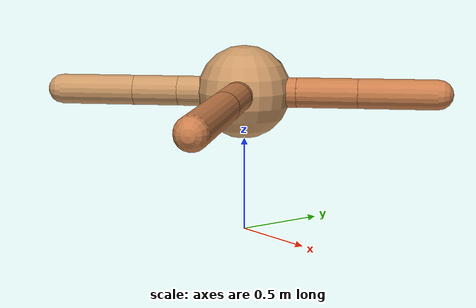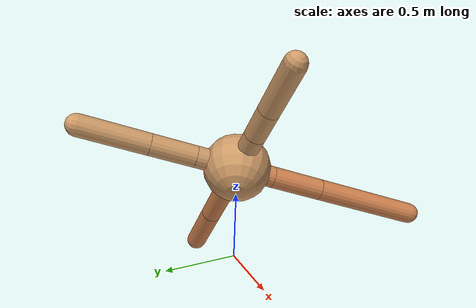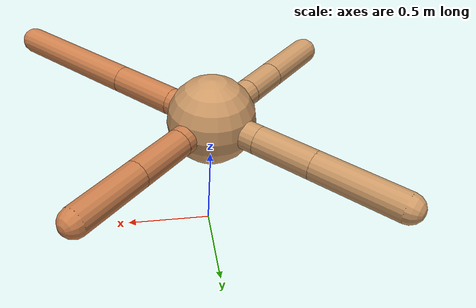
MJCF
<mujoco model="ant">
  <compiler angle="degree" coordinate="local" inertiafromgeom="true" />
  <option integrator="RK4" timestep="0.01" />
  <custom>
    <numeric data="0.0 0.0 0.55 1.0 0.0 0.0 0.0 0.0 1.0 0.0 -1.0 0.0 -1.0 0.0 1.0" name="init_qpos" />
  </custom>
  <default>
    <joint armature="1" damping="1" limited="true" />
    <geom conaffinity="0" condim="3" density="5.0" friction="1.5 0.1 0.1" margin="0.01" rgba="0.8 0.6 0.4 1" />
  </default>
  <worldbody>
    <body name="torso" pos="0 0 0.75">
      <geom name="torso_geom" pos="0 0 0" size="0.25" type="sphere" />

      <body name="front_left_leg" pos="0 0 0">
        <geom fromto="0.0 0.0 0.0 0.2 0.2 0.0" name="aux_1_geom" size="0.08" type="capsule" rgba=".8 .5 .3 1" />
        <body name="aux_1" pos="0.2 0.2 0.0">
          <joint axis="0 0 1" name="hip_1" pos="0.0 0.0 0.0" range="-40 40" type="hinge" />
          <geom fromto="0.0 0.0 0.0 0.2303495997878262 0.2303495997878262 0.0" name="left_leg_geom" size="0.08" type="capsule" rgba=".8 .5 .3 1" />
          <body pos="0.2303495997878262 0.2303495997878262 0.0" name="front_left_foot">
            <joint axis="-1 1 0" name="ankle_1" pos="0.0 0.0 0.0" range="30 100" type="hinge" />
            <geom fromto="0.0 0.0 0.0 0.2969980801080251 0.2969980801080251 0.0" name="left_ankle_geom" size="0.08" type="capsule" rgba=".8 .5 .3 1" />
          </body>
        </body>
      </body>
      <body name="front_right_leg" pos="0 0 0">
        <geom fromto="0.0 0.0 0.0 -0.22147061579373117 0.22147061579373117 0.0" name="aux_2_geom" size="0.08" type="capsule" />
        <body name="aux_2" pos="-0.22147061579373117 0.22147061579373117 0.0">
          <joint axis="0 0 1" name="hip_2" pos="0.0 0.0 0.0" range="-40 40" type="hinge" />
          <geom fromto="0.0 0.0 0.0 -0.23329639674309674 0.23329639674309674 0.0" name="right_leg_geom" size="0.08" type="capsule" />
          <body pos="-0.23329639674309674 0.23329639674309674 0.0" name="front_right_foot">
            <joint axis="1 1 0" name="ankle_2" pos="0.0 0.0 0.0" range="-100 -30" type="hinge" />
            <geom fromto="0.0 0.0 0.0 -0.3490401264214252 0.3490401264214252 0.0" name="right_ankle_geom" size="0.08" type="capsule" />
          </body>
        </body>
      </body>
      <body name="left_back_leg" pos="0 0 0">
        <geom fromto="0.0 0.0 0.0 -0.25192846627506665 -0.25192846627506665 0.0" name="aux_3_geom" size="0.08" type="capsule" />
        <body name="aux_3" pos="-0.25192846627506665 -0.25192846627506665 0.0">
          <joint axis="0 0 1" name="hip_3" pos="0.0 0.0 0.0" range="-40 40" type="hinge" />
          <geom fromto="0.0 0.0 0.0 -0.1712846228804746 -0.1712846228804746 0.0" name="back_leg_geom" size="0.08" type="capsule" />
          <body pos="-0.1712846228804746 -0.1712846228804746 0.0" name="left_back_foot">
            <joint axis="-1 1 0" name="ankle_3" pos="0.0 0.0 0.0" range="-100 -30" type="hinge" />
            <geom fromto="0.0 0.0 0.0 -0.28332002529071726 -0.28332002529071726 0.0" name="third_ankle_geom" size="0.08" type="capsule" />
          </body>
        </body>
      </body>
      <body name="right_back_leg" pos="0 0 0">
        <geom fromto="0.0 0.0 0.0 0.2 -0.2 0.0" name="aux_4_geom" size="0.08" type="capsule" rgba=".8 .5 .3 1" />
        <body name="aux_4" pos="0.2 -0.2 0.0">
          <joint axis="0 0 1" name="hip_4" pos="0.0 0.0 0.0" range="-40 40" type="hinge" />
          <geom fromto="0.0 0.0 0.0 0.2760799272863199 -0.2760799272863199 0.0" name="rightback_leg_geom" size="0.08" type="capsule" rgba=".8 .5 .3 1" />
          <body pos="0.2760799272863199 -0.2760799272863199 0.0" name="right_back_foot">
            <joint axis="1 1 0" name="ankle_4" pos="0.0 0.0 0.0" range="30 100" type="hinge" />
            <geom fromto="0.0 0.0 0.0 0.5761421226862512 -0.5761421226862512 0.0" name="fourth_ankle_geom" size="0.08" type="capsule" rgba=".8 .5 .3 1" />
          </body>
        </body>
      </body>
    </body>
  </worldbody>
  <actuator>
    <motor ctrllimited="true" ctrlrange="-1.0 1.0" joint="hip_4" gear="150" />
    <motor ctrllimited="true" ctrlrange="-1.0 1.0" joint="ankle_4" gear="150" />
    <motor ctrllimited="true" ctrlrange="-1.0 1.0" joint="hip_1" gear="150" />
    <motor ctrllimited="true" ctrlrange="-1.0 1.0" joint="ankle_1" gear="150" />
    <motor ctrllimited="true" ctrlrange="-1.0 1.0" joint="hip_2" gear="150" />
    <motor ctrllimited="true" ctrlrange="-1.0 1.0" joint="ankle_2" gear="150" />
    <motor ctrllimited="true" ctrlrange="-1.0 1.0" joint="hip_3" gear="150" />
    <motor ctrllimited="true" ctrlrange="-1.0 1.0" joint="ankle_3" gear="150" />
  </actuator>
</mujoco>
